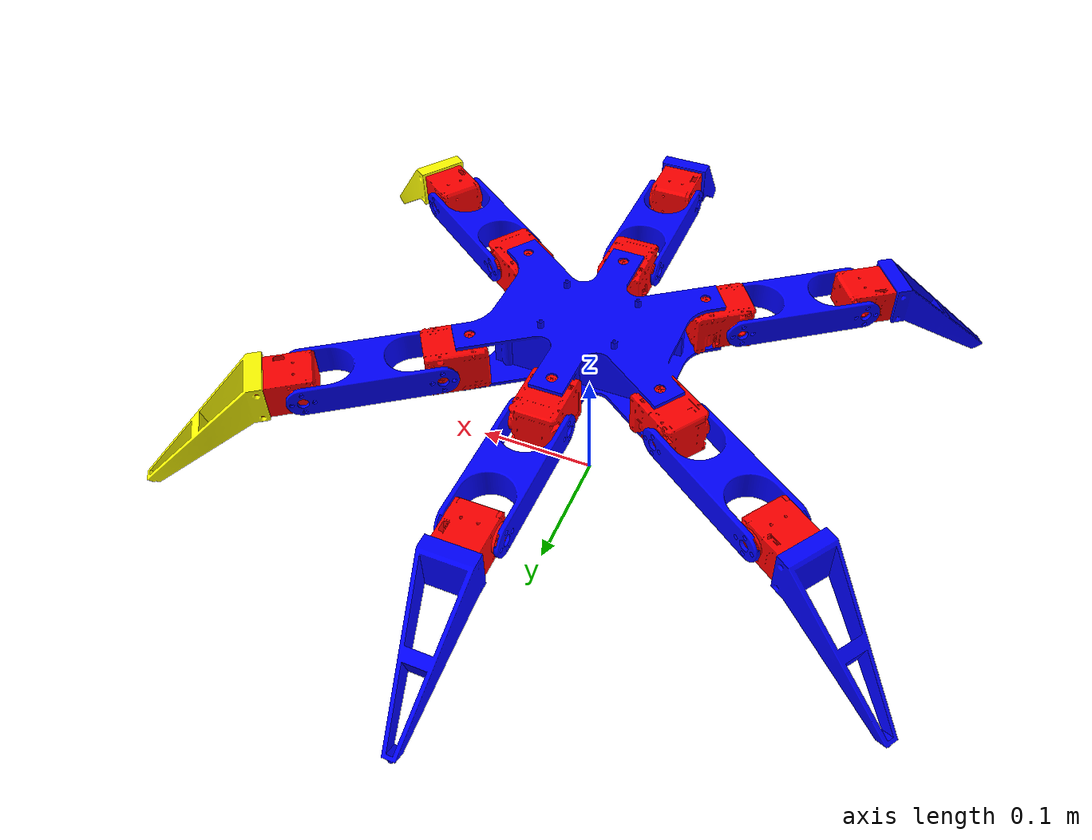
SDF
<sdf version="1.10">
    <model name="hexspider" canonical_link="chassis">
        <pose>0 0 0 0 0 0</pose>
        <plugin filename="gz-sim-joint-state-publisher-system" name="gz::sim::systems::JointStatePublisher"></plugin>
        <plugin filename="gz-sim-joint-position-controller-system" name="gz::sim::systems::JointPositionController">
            <joint_name>leg_br_servo_1</joint_name>
            <initial_position>0.0</initial_position>
            <use_velocity_commands>1</use_velocity_commands>
        </plugin>
        <plugin filename="gz-sim-joint-position-controller-system" name="gz::sim::systems::JointPositionController">
            <joint_name>leg_br_servo_2</joint_name>
            <initial_position>-0.5236</initial_position>
            <use_velocity_commands>1</use_velocity_commands>
        </plugin>
        <plugin filename="gz-sim-joint-position-controller-system" name="gz::sim::systems::JointPositionController">
            <joint_name>leg_br_servo_3</joint_name>
            <initial_position>1.5472</initial_position>
            <use_velocity_commands>1</use_velocity_commands>
        </plugin>
        <plugin filename="gz-sim-joint-position-controller-system" name="gz::sim::systems::JointPositionController">
            <joint_name>leg_bl_servo_1</joint_name>
            <initial_position>0.0</initial_position>
            <use_velocity_commands>1</use_velocity_commands>
        </plugin>
        <plugin filename="gz-sim-joint-position-controller-system" name="gz::sim::systems::JointPositionController">
            <joint_name>leg_bl_servo_2</joint_name>
            <initial_position>-0.5236</initial_position>
            <use_velocity_commands>1</use_velocity_commands>
        </plugin>
        <plugin filename="gz-sim-joint-position-controller-system" name="gz::sim::systems::JointPositionController">
            <joint_name>leg_bl_servo_3</joint_name>
            <initial_position>1.5472</initial_position>
            <use_velocity_commands>1</use_velocity_commands>
        </plugin>
        <plugin filename="gz-sim-joint-position-controller-system" name="gz::sim::systems::JointPositionController">
            <joint_name>leg_fr_servo_1</joint_name>
            <initial_position>0.0</initial_position>
            <use_velocity_commands>1</use_velocity_commands>
        </plugin>
        <plugin filename="gz-sim-joint-position-controller-system" name="gz::sim::systems::JointPositionController">
            <joint_name>leg_fr_servo_2</joint_name>
            <initial_position>-0.5236</initial_position>
            <use_velocity_commands>1</use_velocity_commands>
        </plugin>
        <plugin filename="gz-sim-joint-position-controller-system" name="gz::sim::systems::JointPositionController">
            <joint_name>leg_fr_servo_3</joint_name>
            <initial_position>1.5472</initial_position>
            <use_velocity_commands>1</use_velocity_commands>
        </plugin>
        <plugin filename="gz-sim-joint-position-controller-system" name="gz::sim::systems::JointPositionController">
            <joint_name>leg_cr_servo_1</joint_name>
            <initial_position>0.0</initial_position>
            <use_velocity_commands>1</use_velocity_commands>
        </plugin>
        <plugin filename="gz-sim-joint-position-controller-system" name="gz::sim::systems::JointPositionController">
            <joint_name>leg_cr_servo_2</joint_name>
            <initial_position>-0.5236</initial_position>
            <use_velocity_commands>1</use_velocity_commands>
        </plugin>
        <plugin filename="gz-sim-joint-position-controller-system" name="gz::sim::systems::JointPositionController">
            <joint_name>leg_cr_servo_3</joint_name>
            <initial_position>1.5472</initial_position>
            <use_velocity_commands>1</use_velocity_commands>
        </plugin>
        <plugin filename="gz-sim-joint-position-controller-system" name="gz::sim::systems::JointPositionController">
            <joint_name>leg_cl_servo_1</joint_name>
            <initial_position>0.0</initial_position>
            <use_velocity_commands>1</use_velocity_commands>
        </plugin>
        <plugin filename="gz-sim-joint-position-controller-system" name="gz::sim::systems::JointPositionController">
            <joint_name>leg_cl_servo_2</joint_name>
            <initial_position>-0.5236</initial_position>
            <use_velocity_commands>1</use_velocity_commands>
        </plugin>
        <plugin filename="gz-sim-joint-position-controller-system" name="gz::sim::systems::JointPositionController">
            <joint_name>leg_cl_servo_3</joint_name>
            <initial_position>1.5472</initial_position>
            <use_velocity_commands>1</use_velocity_commands>
        </plugin>
        <plugin filename="gz-sim-joint-position-controller-system" name="gz::sim::systems::JointPositionController">
            <joint_name>leg_fl_servo_1</joint_name>
            <initial_position>0.0</initial_position>
            <use_velocity_commands>1</use_velocity_commands>
        </plugin>
        <plugin filename="gz-sim-joint-position-controller-system" name="gz::sim::systems::JointPositionController">
            <joint_name>leg_fl_servo_2</joint_name>
            <initial_position>-0.5236</initial_position>
            <use_velocity_commands>1</use_velocity_commands>
        </plugin>
        <plugin filename="gz-sim-joint-position-controller-system" name="gz::sim::systems::JointPositionController">
            <joint_name>leg_fl_servo_3</joint_name>
            <initial_position>1.5472</initial_position>
            <use_velocity_commands>1</use_velocity_commands>
        </plugin>
        <plugin filename="gz-sim-imu-system"
                name="gz::sim::systems::Imu">
        </plugin>
        <link name="chassis">
            <pose relative_to="__model__">0 0 0.15 0 0 -1.57</pose>
            <inertial>
                <mass>0.188490</mass>
                <density>100</density>
                <inertia>
                    <ixx>4.024e-04</ixx>
                    <ixy>5.662e-19</ixy>
                    <ixz>-5.234e-18</ixz>
                    <iyy>2.646e-04</iyy>
                    <iyz>0</iyz>
                    <izz>5.502e-04</izz>
                </inertia>
            </inertial>
            <visual name="chassis_visual">
                <geometry>
                    <mesh>
                        <uri>model://hexspider/meshes/Chassis_v37.stl</uri>
                        <scale>0.001 0.001 0.001</scale>
                    </mesh>
                </geometry>
                <material>
                    <ambient>0 0 1 1</ambient>
                    <diffuse>0 0 1 1</diffuse>
                    <specular>0 0 1 1</specular>
                </material>
                <transparency>0</transparency>
                <cast_shadows>1</cast_shadows>
            </visual>
            <collision name="chassis_collision">
                <geometry>
                    <box>
                        <size>0.164 0.182020 0.05</size>
                    </box>
                </geometry>
            </collision>
            <sensor name="imu_sensor" type="imu">
                <always_on>1</always_on>
                <update_rate>100</update_rate>
                <visualize>true</visualize>
                <topic>/model/hexspider/imu</topic>
            </sensor>
        </link>
        <link name="leg_br_2xl_430">
            <pose relative_to="chassis">0.058219 -0.083748 0.0 0 0 0.610865</pose>
            <inertial>
                <mass>0.098</mass>
                <inertia>
                    <ixx>0.00002686</ixx>
                    <ixy>0.000000525</ixy>
                    <ixz>0.000000288</ixz>
                    <iyy>0.000016993</iyy>
                    <iyz>-0.000000524</iyz>
                    <izz>0.000026995</izz>
                </inertia>
            </inertial>
            <visual name="visual">
                <geometry>
                    <mesh>
                        <uri>model://hexspider/meshes/2XL-430_v4.stl</uri>
                        <scale>0.001 0.001 0.001</scale>
                    </mesh>
                </geometry>
                <material>
                    <ambient>1.0 0.0 0.0 1</ambient>
                    <diffuse>1.0 0.0 0.0 1</diffuse>
                    <specular>1.0 0.0 0.0 1</specular>
                </material>
                <transparency>0</transparency>
                <cast_shadows>1</cast_shadows>
            </visual>
            <collision name="collision">
                <geometry>
                    <box>
                        <size>0.036 0.0465 0.036</size>
                    </box>
                </geometry>
            </collision>
        </link>
        <link name="leg_br_coxa">
            <pose relative_to="leg_br_2xl_430">0 -0.062 0 0 0 0</pose>
            <inertial>
                <mass>0.059976</mass>
                <inertia>
                    <ixx>0.000019426</ixx>
                    <ixy>-7.7e-11</ixy>
                    <ixz>4.885e-14</ixz>
                    <iyy>0.000032981</iyy>
                    <iyz>0</iyz>
                    <izz>0.000046665</izz>
                </inertia>
            </inertial>
            <visual name="visual">
                <pose relative_to="leg_br_coxa">0.0 -0.144 0 0 0 1.57</pose>
                <geometry>
                    <mesh>
                        <uri>model://hexspider/meshes/Coxa_v37.stl</uri>
                        <scale>0.001 0.001 0.001</scale>
                    </mesh>
                </geometry>
                <material>
                    <ambient>0 0 1 1</ambient>
                    <diffuse>0 0 1 1</diffuse>
                    <specular>0 0 1 1</specular>
                </material>
                <transparency>0</transparency>
                <cast_shadows>1</cast_shadows>
            </visual>
            <collision name="collision">
                <geometry>
                    <box>
                        <size>0.046 0.124 0.024</size>
                    </box>
                </geometry>
            </collision>
        </link>
        <link name="leg_br_xl_430">
            <pose relative_to="leg_br_coxa">0.0 -0.05 0.0 0.0 1.57 0.0</pose>
            <inertial>
                <mass>0.098</mass>
                <inertia>
                    <ixx>0.00002686</ixx>
                    <ixy>0.000000525</ixy>
                    <ixz>0.000000288</ixz>
                    <iyy>0.000016993</iyy>
                    <iyz>-0.000000524</iyz>
                    <izz>0.000026995</izz>
                </inertia>
            </inertial>
            <visual name="visual">
                <geometry>
                    <mesh>
                        <uri>model://hexspider/meshes/XL-430_new_v2.stl</uri>
                        <scale>0.001 0.001 0.001</scale>
                    </mesh>
                </geometry>
                <material>
                    <ambient>1 0 0 1</ambient>
                    <diffuse>1 0 0 1</diffuse>
                    <specular>1 0 0 1</specular>
                </material>
                <transparency>0</transparency>
                <cast_shadows>1</cast_shadows>
            </visual>
            <collision name="collision">
                <geometry>
                    <box>
                        <size>0.0285 0.0465 0.034</size>
                    </box>
                </geometry>
            </collision>
        </link>
        <link name="leg_br_femur">
            <pose relative_to="leg_br_xl_430">0.04511 -0.06325 0 1.57 0.0 -1.57</pose>
            <inertial>
                <mass>0.029032</mass>
                <inertia>
                    <ixx>0.000035762</ixx>
                    <ixy>0</ixy>
                    <ixz>0.000013215</ixz>
                    <iyy>0.000038367</iyy>
                    <iyz>0</iyz>
                    <izz>0.000010773</izz>
                </inertia>
            </inertial>
            <visual name="visual">
                <pose relative_to="leg_br_femur">-0.24056 0.0 -0.038 0 -0.44 0</pose>
                <geometry>
                    <mesh>
                        <uri>model://hexspider/meshes/Femur_20260405_1.stl</uri>
                        <scale>0.001 0.001 0.001</scale>
                    </mesh>
                </geometry>
                <material>
                    <ambient>0 0 1 1</ambient>
                    <diffuse>0 0 1 1</diffuse>
                    <specular>0 0 1 1</specular>
                </material>
                <transparency>0</transparency>
                <cast_shadows>1</cast_shadows>
            </visual>
            <collision name="collision">
                <pose relative_to="leg_br_femur">-0.24056 0.0 -0.038 0 -0.44 0</pose>
                <geometry>
                    <mesh>
                        <uri>model://hexspider/meshes/Femur_20260405_1.stl</uri>
                        <scale>0.001 0.001 0.001</scale>
                    </mesh>
                </geometry>
                <surface>
                    <friction>
                        <ode>
                            <mu>1.0</mu>
                            <mu2>1.0</mu2>
                        </ode>
                    </friction>
                    <contact>
                        <ode>
                            <kp>10000</kp>
                            <kd>10</kd>
                        </ode>
                    </contact>
                </surface>
            </collision>
        </link>
        <link name="leg_cr_2xl_430">
            <pose relative_to="chassis">0.082 0 0.0 0 0 1.570796</pose>
            <inertial>
                <mass>0.098</mass>
                <inertia>
                    <ixx>0.00002686</ixx>
                    <ixy>0.000000525</ixy>
                    <ixz>0.000000288</ixz>
                    <iyy>0.000016993</iyy>
                    <iyz>-0.000000524</iyz>
                    <izz>0.000026995</izz>
                </inertia>
            </inertial>
            <visual name="visual">
                <geometry>
                    <mesh>
                        <uri>model://hexspider/meshes/2XL-430_v4.stl</uri>
                        <scale>0.001 0.001 0.001</scale>
                    </mesh>
                </geometry>
                <material>
                    <ambient>1.0 0.0 0.0 1</ambient>
                    <diffuse>1.0 0.0 0.0 1</diffuse>
                    <specular>1.0 0.0 0.0 1</specular>
                </material>
                <transparency>0</transparency>
                <cast_shadows>1</cast_shadows>
            </visual>
            <collision name="collision">
                <geometry>
                    <box>
                        <size>0.036 0.0465 0.036</size>
                    </box>
                </geometry>
            </collision>
        </link>
        <link name="leg_cr_coxa">
            <pose relative_to="leg_cr_2xl_430">0 -0.062 0 0 0 0</pose>
            <inertial>
                <mass>0.059976</mass>
                <inertia>
                    <ixx>0.000019426</ixx>
                    <ixy>-7.7e-11</ixy>
                    <ixz>4.885e-14</ixz>
                    <iyy>0.000032981</iyy>
                    <iyz>0</iyz>
                    <izz>0.000046665</izz>
                </inertia>
            </inertial>
            <visual name="visual">
                <pose relative_to="leg_cr_coxa">0.0 -0.144 0 0 0 1.57</pose>
                <geometry>
                    <mesh>
                        <uri>model://hexspider/meshes/Coxa_v37.stl</uri>
                        <scale>0.001 0.001 0.001</scale>
                    </mesh>
                </geometry>
                <material>
                    <ambient>0 0 1 1</ambient>
                    <diffuse>0 0 1 1</diffuse>
                    <specular>0 0 1 1</specular>
                </material>
                <transparency>0</transparency>
                <cast_shadows>1</cast_shadows>
            </visual>
            <collision name="collision">
                <geometry>
                    <box>
                        <size>0.046 0.124 0.024</size>
                    </box>
                </geometry>
            </collision>
        </link>
        <link name="leg_cr_xl_430">
            <pose relative_to="leg_cr_coxa">0.0 -0.05 0.0 0.0 1.57 0.0</pose>
            <inertial>
                <mass>0.098</mass>
                <inertia>
                    <ixx>0.00002686</ixx>
                    <ixy>0.000000525</ixy>
                    <ixz>0.000000288</ixz>
                    <iyy>0.000016993</iyy>
                    <iyz>-0.000000524</iyz>
                    <izz>0.000026995</izz>
                </inertia>
            </inertial>
            <visual name="visual">
                <geometry>
                    <mesh>
                        <uri>model://hexspider/meshes/XL-430_new_v2.stl</uri>
                        <scale>0.001 0.001 0.001</scale>
                    </mesh>
                </geometry>
                <material>
                    <ambient>1 0 0 1</ambient>
                    <diffuse>1 0 0 1</diffuse>
                    <specular>1 0 0 1</specular>
                </material>
                <transparency>0</transparency>
                <cast_shadows>1</cast_shadows>
            </visual>
            <collision name="collision">
                <geometry>
                    <box>
                        <size>0.0285 0.0465 0.034</size>
                    </box>
                </geometry>
            </collision>
        </link>
        <link name="leg_cr_femur">
            <pose relative_to="leg_cr_xl_430">0.04511 -0.06325 0 1.57 0.0 -1.57</pose>
            <inertial>
                <mass>0.028812</mass>
                <inertia>
                    <ixx>0.000034156</ixx>
                    <ixy>0</ixy>
                    <ixz>0.000012503</ixz>
                    <iyy>0.000036442</iyy>
                    <iyz>0</iyz>
                    <izz>0.000010478</izz>
                </inertia>
            </inertial>
            <visual name="visual">
                <pose relative_to="leg_cr_femur">-0.24056 0.0 -0.038 0 -0.44 0</pose>
                <geometry>
                    <mesh>
                        <uri>model://hexspider/meshes/Femur_20260405_1.stl</uri>
                        <scale>0.001 0.001 0.001</scale>
                    </mesh>
                </geometry>
                <material>
                    <ambient>0 0 1 1</ambient>
                    <diffuse>0 0 1 1</diffuse>
                    <specular>0 0 1 1</specular>
                </material>
                <transparency>0</transparency>
                <cast_shadows>1</cast_shadows>
            </visual>
            <collision name="collision">
                <pose relative_to="leg_cr_femur">-0.24056 0.0 -0.038 0 -0.44 0</pose>
                <geometry>
                    <mesh>
                        <uri>model://hexspider/meshes/Femur_20260405_1.stl</uri>
                        <scale>0.001 0.001 0.001</scale>
                    </mesh>
                </geometry>
                <surface>
                    <friction>
                        <ode>
                            <mu>1.0</mu>
                            <mu2>1.0</mu2>
                        </ode>
                    </friction>
                    <contact>
                        <ode>
                            <kp>10000</kp>
                            <kd>10</kd>
                        </ode>
                    </contact>
                </surface>
            </collision>
        </link>
        <link name="leg_fr_2xl_430">
            <pose relative_to="chassis">0.058219 0.083748 0.0 0 0 2.530727</pose>
            <inertial>
                <mass>0.098</mass>
                <inertia>
                    <ixx>0.00002686</ixx>
                    <ixy>0.000000525</ixy>
                    <ixz>0.000000288</ixz>
                    <iyy>0.000016993</iyy>
                    <iyz>-0.000000524</iyz>
                    <izz>0.000026995</izz>
                </inertia>
            </inertial>
            <visual name="visual">
                <geometry>
                    <mesh>
                        <uri>model://hexspider/meshes/2XL-430_v4.stl</uri>
                        <scale>0.001 0.001 0.001</scale>
                    </mesh>
                </geometry>
                <material>
                    <ambient>1.0 0.0 0.0 1</ambient>
                    <diffuse>1.0 0.0 0.0 1</diffuse>
                    <specular>1.0 0.0 0.0 1</specular>
                </material>
                <transparency>0</transparency>
                <cast_shadows>1</cast_shadows>
            </visual>
            <collision name="collision">
                <geometry>
                    <box>
                        <size>0.036 0.0465 0.036</size>
                    </box>
                </geometry>
            </collision>
        </link>
        <link name="leg_fr_coxa">
            <pose relative_to="leg_fr_2xl_430">0 -0.062 0 0 0 0</pose>
            <inertial>
                <mass>0.059976</mass>
                <inertia>
                    <ixx>0.000019426</ixx>
                    <ixy>-7.7e-11</ixy>
                    <ixz>4.885e-14</ixz>
                    <iyy>0.000032981</iyy>
                    <iyz>0</iyz>
                    <izz>0.000046665</izz>
                </inertia>
            </inertial>
            <visual name="visual">
                <pose relative_to="leg_fr_coxa">0.0 -0.144 0 0 0 1.57</pose>
                <geometry>
                    <mesh>
                        <uri>model://hexspider/meshes/Coxa_v37.stl</uri>
                        <scale>0.001 0.001 0.001</scale>
                    </mesh>
                </geometry>
                <material>
                    <ambient>0 0 1 1</ambient>
                    <diffuse>0 0 1 1</diffuse>
                    <specular>0 0 1 1</specular>
                </material>
                <transparency>0</transparency>
                <cast_shadows>1</cast_shadows>
            </visual>
            <collision name="collision">
                <geometry>
                    <box>
                        <size>0.046 0.124 0.024</size>
                    </box>
                </geometry>
            </collision>
        </link>
        <link name="leg_fr_xl_430">
            <pose relative_to="leg_fr_coxa">0.0 -0.05 0.0 0.0 1.57 0.0</pose>
            <inertial>
                <mass>0.098</mass>
                <inertia>
                    <ixx>0.00002686</ixx>
                    <ixy>0.000000525</ixy>
                    <ixz>0.000000288</ixz>
                    <iyy>0.000016993</iyy>
                    <iyz>-0.000000524</iyz>
                    <izz>0.000026995</izz>
                </inertia>
            </inertial>
            <visual name="visual">
                <geometry>
                    <mesh>
                        <uri>model://hexspider/meshes/XL-430_new_v2.stl</uri>
                        <scale>0.001 0.001 0.001</scale>
                    </mesh>
                </geometry>
                <material>
                    <ambient>1 0 0 1</ambient>
                    <diffuse>1 0 0 1</diffuse>
                    <specular>1 0 0 1</specular>
                </material>
                <transparency>0</transparency>
                <cast_shadows>1</cast_shadows>
            </visual>
            <collision name="collision">
                <geometry>
                    <box>
                        <size>0.0285 0.0465 0.034</size>
                    </box>
                </geometry>
            </collision>
        </link>
        <link name="leg_fr_femur">
            <pose relative_to="leg_fr_xl_430">0.04511 -0.06325 0 1.57 0.0 -1.57</pose>
            <inertial>
                <mass>0.028812</mass>
                <inertia>
                    <ixx>0.000034156</ixx>
                    <ixy>0</ixy>
                    <ixz>0.000012503</ixz>
                    <iyy>0.000036442</iyy>
                    <iyz>0</iyz>
                    <izz>0.000010478</izz>
                </inertia>
            </inertial>
            <visual name="visual">
                <pose relative_to="leg_fr_femur">-0.24056 0.0 -0.038 0 -0.44 0</pose>
                <geometry>
                    <mesh>
                        <uri>model://hexspider/meshes/Femur_20260405_1.stl</uri>
                        <scale>0.001 0.001 0.001</scale>
                    </mesh>
                </geometry>
                <material>
                    <ambient>1 1 0 1</ambient>
                    <diffuse>1 1 0 1</diffuse>
                    <specular>1 1 0 1</specular>
                </material>
                <transparency>0</transparency>
                <cast_shadows>1</cast_shadows>
            </visual>
            <collision name="collision">
                <pose relative_to="leg_fr_femur">-0.24056 0.0 -0.038 0 -0.44 0</pose>
                <geometry>
                    <mesh>
                        <uri>model://hexspider/meshes/Femur_20260405_1.stl</uri>
                        <scale>0.001 0.001 0.001</scale>
                    </mesh>
                </geometry>
                <surface>
                    <friction>
                        <ode>
                            <mu>1.0</mu>
                            <mu2>1.0</mu2>
                        </ode>
                    </friction>
                    <contact>
                        <ode>
                            <kp>10000</kp>
                            <kd>10</kd>
                        </ode>
                    </contact>
                </surface>
            </collision>
        </link>
        <link name="leg_bl_2xl_430">
            <pose relative_to="chassis">-0.058219 -0.083748 0.0 0 0 -0.610865</pose>
            <inertial>
                <mass>0.098</mass>
                <inertia>
                    <ixx>0.00002686</ixx>
                    <ixy>0.000000525</ixy>
                    <ixz>0.000000288</ixz>
                    <iyy>0.000016993</iyy>
                    <iyz>-0.000000524</iyz>
                    <izz>0.000026995</izz>
                </inertia>
            </inertial>
            <visual name="visual">
                <geometry>
                    <mesh>
                        <uri>model://hexspider/meshes/2XL-430_v4.stl</uri>
                        <scale>0.001 0.001 0.001</scale>
                    </mesh>
                </geometry>
                <material>
                    <ambient>1.0 0.0 0.0 1</ambient>
                    <diffuse>1.0 0.0 0.0 1</diffuse>
                    <specular>1.0 0.0 0.0 1</specular>
                </material>
                <transparency>0</transparency>
                <cast_shadows>1</cast_shadows>
            </visual>
            <collision name="collision">
                <geometry>
                    <box>
                        <size>0.036 0.0465 0.036</size>
                    </box>
                </geometry>
            </collision>
        </link>
        <link name="leg_bl_coxa">
            <pose relative_to="leg_bl_2xl_430">0 -0.062 0 0 0 0</pose>
            <inertial>
                <mass>0.059976</mass>
                <inertia>
                    <ixx>0.000019426</ixx>
                    <ixy>-7.7e-11</ixy>
                    <ixz>4.885e-14</ixz>
                    <iyy>0.000032981</iyy>
                    <iyz>0</iyz>
                    <izz>0.000046665</izz>
                </inertia>
            </inertial>
            <visual name="visual">
                <pose relative_to="leg_bl_coxa">0.0 -0.144 0 0 0 1.57</pose>
                <geometry>
                    <mesh>
                        <uri>model://hexspider/meshes/Coxa_v37.stl</uri>
                        <scale>0.001 0.001 0.001</scale>
                    </mesh>
                </geometry>
                <material>
                    <ambient>0 0 1 1</ambient>
                    <diffuse>0 0 1 1</diffuse>
                    <specular>0 0 1 1</specular>
                </material>
                <transparency>0</transparency>
                <cast_shadows>1</cast_shadows>
            </visual>
            <collision name="collision">
                <geometry>
                    <box>
                        <size>0.046 0.124 0.024</size>
                    </box>
                </geometry>
            </collision>
        </link>
        <link name="leg_bl_xl_430">
            <pose relative_to="leg_bl_coxa">0.0 -0.05 0.0 0.0 1.57 0.0</pose>
            <inertial>
                <mass>0.098</mass>
                <inertia>
                    <ixx>0.00002686</ixx>
                    <ixy>0.000000525</ixy>
                    <ixz>0.000000288</ixz>
                    <iyy>0.000016993</iyy>
                    <iyz>-0.000000524</iyz>
                    <izz>0.000026995</izz>
                </inertia>
            </inertial>
            <visual name="visual">
                <geometry>
                    <mesh>
                        <uri>model://hexspider/meshes/XL-430_new_v2.stl</uri>
                        <scale>0.001 0.001 0.001</scale>
                    </mesh>
                </geometry>
                <material>
                    <ambient>1 0 0 1</ambient>
                    <diffuse>1 0 0 1</diffuse>
                    <specular>1 0 0 1</specular>
                </material>
                <transparency>0</transparency>
                <cast_shadows>1</cast_shadows>
            </visual>
            <collision name="collision">
                <geometry>
                    <box>
                        <size>0.0285 0.0465 0.034</size>
                    </box>
                </geometry>
            </collision>
        </link>
        <link name="leg_bl_femur">
            <pose relative_to="leg_bl_xl_430">0.04511 -0.06325 0 1.57 0.0 -1.57</pose>
            <inertial>
                <mass>0.028812</mass>
                <inertia>
                    <ixx>0.000034156</ixx>
                    <ixy>0</ixy>
                    <ixz>0.000012503</ixz>
                    <iyy>0.000036442</iyy>
                    <iyz>0</iyz>
                    <izz>0.000010478</izz>
                </inertia>
            </inertial>
            <visual name="visual">
                <pose relative_to="leg_bl_femur">-0.24056 0.0 -0.038 0 -0.44 0</pose>
                <geometry>
                    <mesh>
                        <uri>model://hexspider/meshes/Femur_20260405_1.stl</uri>
                        <scale>0.001 0.001 0.001</scale>
                    </mesh>
                </geometry>
                <material>
                    <ambient>0 0 1 1</ambient>
                    <diffuse>0 0 1 1</diffuse>
                    <specular>0 0 1 1</specular>
                </material>
                <transparency>0</transparency>
                <cast_shadows>1</cast_shadows>
            </visual>
            <collision name="collision">
                <pose relative_to="leg_bl_femur">-0.24056 0.0 -0.038 0 -0.44 0</pose>
                <geometry>
                    <mesh>
                        <uri>model://hexspider/meshes/Femur_20260405_1.stl</uri>
                        <scale>0.001 0.001 0.001</scale>
                    </mesh>
                </geometry>
                <surface>
                    <friction>
                        <ode>
                            <mu>1.0</mu>
                            <mu2>1.0</mu2>
                        </ode>
                    </friction>
                    <contact>
                        <ode>
                            <kp>10000</kp>
                            <kd>10</kd>
                        </ode>
                    </contact>
                </surface>
            </collision>
        </link>
        <link name="leg_cl_2xl_430">
            <pose relative_to="chassis">-0.082 0 0.0 0 0 -1.570796</pose>
            <inertial>
                <mass>0.098</mass>
                <inertia>
                    <ixx>0.00002686</ixx>
                    <ixy>0.000000525</ixy>
                    <ixz>0.000000288</ixz>
                    <iyy>0.000016993</iyy>
                    <iyz>-0.000000524</iyz>
                    <izz>0.000026995</izz>
                </inertia>
            </inertial>
            <visual name="visual">
                <geometry>
                    <mesh>
                        <uri>model://hexspider/meshes/2XL-430_v4.stl</uri>
                        <scale>0.001 0.001 0.001</scale>
                    </mesh>
                </geometry>
                <material>
                    <ambient>1.0 0.0 0.0 1</ambient>
                    <diffuse>1.0 0.0 0.0 1</diffuse>
                    <specular>1.0 0.0 0.0 1</specular>
                </material>
                <transparency>0</transparency>
                <cast_shadows>1</cast_shadows>
            </visual>
            <collision name="collision">
                <geometry>
                    <box>
                        <size>0.036 0.0465 0.036</size>
                    </box>
                </geometry>
            </collision>
        </link>
        <link name="leg_cl_coxa">
            <pose relative_to="leg_cl_2xl_430">0 -0.062 0 0 0 0</pose>
            <inertial>
                <mass>0.059976</mass>
                <inertia>
                    <ixx>0.000019426</ixx>
                    <ixy>-7.7e-11</ixy>
                    <ixz>4.885e-14</ixz>
                    <iyy>0.000032981</iyy>
                    <iyz>0</iyz>
                    <izz>0.000046665</izz>
                </inertia>
            </inertial>
            <visual name="visual">
                <pose relative_to="leg_cl_coxa">0.0 -0.144 0 0 0 1.57</pose>
                <geometry>
                    <mesh>
                        <uri>model://hexspider/meshes/Coxa_v37.stl</uri>
                        <scale>0.001 0.001 0.001</scale>
                    </mesh>
                </geometry>
                <material>
                    <ambient>0 0 1 1</ambient>
                    <diffuse>0 0 1 1</diffuse>
                    <specular>0 0 1 1</specular>
                </material>
                <transparency>0</transparency>
                <cast_shadows>1</cast_shadows>
            </visual>
            <collision name="collision">
                <geometry>
                    <box>
                        <size>0.046 0.124 0.024</size>
                    </box>
                </geometry>
            </collision>
        </link>
        <link name="leg_cl_xl_430">
            <pose relative_to="leg_cl_coxa">0.0 -0.05 0.0 0.0 1.57 0.0</pose>
            <inertial>
                <mass>0.098</mass>
                <inertia>
                    <ixx>0.00002686</ixx>
                    <ixy>0.000000525</ixy>
                    <ixz>0.000000288</ixz>
                    <iyy>0.000016993</iyy>
                    <iyz>-0.000000524</iyz>
                    <izz>0.000026995</izz>
                </inertia>
            </inertial>
            <visual name="visual">
                <geometry>
                    <mesh>
                        <uri>model://hexspider/meshes/XL-430_new_v2.stl</uri>
                        <scale>0.001 0.001 0.001</scale>
                    </mesh>
                </geometry>
                <material>
                    <ambient>1 0 0 1</ambient>
                    <diffuse>1 0 0 1</diffuse>
                    <specular>1 0 0 1</specular>
                </material>
                <transparency>0</transparency>
                <cast_shadows>1</cast_shadows>
            </visual>
            <collision name="collision">
                <geometry>
                    <box>
                        <size>0.0285 0.0465 0.034</size>
                    </box>
                </geometry>
            </collision>
        </link>
        <link name="leg_cl_femur">
            <pose relative_to="leg_cl_xl_430">0.04511 -0.06325 0 1.57 0.0 -1.57</pose>
            <inertial>
                <mass>0.028812</mass>
                <inertia>
                    <ixx>0.000034156</ixx>
                    <ixy>0</ixy>
                    <ixz>0.000012503</ixz>
                    <iyy>0.000036442</iyy>
                    <iyz>0</iyz>
                    <izz>0.000010478</izz>
                </inertia>
            </inertial>
            <visual name="visual">
                <pose relative_to="leg_cl_femur">-0.24056 0.0 -0.038 0 -0.44 0</pose>
                <geometry>
                    <mesh>
                        <uri>model://hexspider/meshes/Femur_20260405_1.stl</uri>
                        <scale>0.001 0.001 0.001</scale>
                    </mesh>
                </geometry>
                <material>
                    <ambient>0 0 1 1</ambient>
                    <diffuse>0 0 1 1</diffuse>
                    <specular>0 0 1 1</specular>
                </material>
                <transparency>0</transparency>
                <cast_shadows>1</cast_shadows>
            </visual>
            <collision name="collision">
                <pose relative_to="leg_cl_femur">-0.24056 0.0 -0.038 0 -0.44 0</pose>
                <geometry>
                    <mesh>
                        <uri>model://hexspider/meshes/Femur_20260405_1.stl</uri>
                        <scale>0.001 0.001 0.001</scale>
                    </mesh>
                </geometry>
                <surface>
                    <friction>
                        <ode>
                            <mu>1.0</mu>
                            <mu2>1.0</mu2>
                        </ode>
                    </friction>
                    <contact>
                        <ode>
                            <kp>10000</kp>
                            <kd>10</kd>
                        </ode>
                    </contact>
                </surface>
            </collision>
        </link>
        <link name="leg_fl_2xl_430">
            <pose relative_to="chassis">-0.058219 0.083748 0.0 0 0 -2.530727</pose>
            <inertial>
                <mass>0.098</mass>
                <inertia>
                    <ixx>0.00002686</ixx>
                    <ixy>0.000000525</ixy>
                    <ixz>0.000000288</ixz>
                    <iyy>0.000016993</iyy>
                    <iyz>-0.000000524</iyz>
                    <izz>0.000026995</izz>
                </inertia>
            </inertial>
            <visual name="visual">
                <geometry>
                    <mesh>
                        <uri>model://hexspider/meshes/2XL-430_v4.stl</uri>
                        <scale>0.001 0.001 0.001</scale>
                    </mesh>
                </geometry>
                <material>
                    <ambient>1.0 0.0 0.0 1</ambient>
                    <diffuse>1.0 0.0 0.0 1</diffuse>
                    <specular>1.0 0.0 0.0 1</specular>
                </material>
                <transparency>0</transparency>
                <cast_shadows>1</cast_shadows>
            </visual>
            <collision name="collision">
                <geometry>
                    <box>
                        <size>0.036 0.0465 0.036</size>
                    </box>
                </geometry>
            </collision>
        </link>
        <link name="leg_fl_coxa">
            <pose relative_to="leg_fl_2xl_430">0 -0.062 0 0 0 0</pose>
            <inertial>
                <mass>0.059976</mass>
                <inertia>
                    <ixx>0.000019426</ixx>
                    <ixy>-7.7e-11</ixy>
                    <ixz>4.885e-14</ixz>
                    <iyy>0.000032981</iyy>
                    <iyz>0</iyz>
                    <izz>0.000046665</izz>
                </inertia>
            </inertial>
            <visual name="visual">
                <pose relative_to="leg_fl_coxa">0.0 -0.144 0 0 0 1.57</pose>
                <geometry>
                    <mesh>
                        <uri>model://hexspider/meshes/Coxa_v37.stl</uri>
                        <scale>0.001 0.001 0.001</scale>
                    </mesh>
                </geometry>
                <material>
                    <ambient>0 0 1 1</ambient>
                    <diffuse>0 0 1 1</diffuse>
                    <specular>0 0 1 1</specular>
                </material>
                <transparency>0</transparency>
                <cast_shadows>1</cast_shadows>
            </visual>
            <collision name="collision">
                <geometry>
                    <box>
                        <size>0.046 0.124 0.024</size>
                    </box>
                </geometry>
            </collision>
        </link>
        <link name="leg_fl_xl_430">
            <pose relative_to="leg_fl_coxa">0.0 -0.05 0.0 0.0 1.57 0.0</pose>
            <inertial>
                <mass>0.098</mass>
                <inertia>
                    <ixx>0.00002686</ixx>
                    <ixy>0.000000525</ixy>
                    <ixz>0.000000288</ixz>
                    <iyy>0.000016993</iyy>
                    <iyz>-0.000000524</iyz>
                    <izz>0.000026995</izz>
                </inertia>
            </inertial>
            <visual name="visual">
                <geometry>
                    <mesh>
                        <uri>model://hexspider/meshes/XL-430_new_v2.stl</uri>
                        <scale>0.001 0.001 0.001</scale>
                    </mesh>
                </geometry>
                <material>
                    <ambient>1 0 0 1</ambient>
                    <diffuse>1 0 0 1</diffuse>
                    <specular>1 0 0 1</specular>
                </material>
                <transparency>0</transparency>
                <cast_shadows>1</cast_shadows>
            </visual>
            <collision name="collision">
                <geometry>
                    <box>
                        <size>0.0285 0.0465 0.034</size>
                    </box>
                </geometry>
            </collision>
        </link>
        <link name="leg_fl_femur">
            <pose relative_to="leg_fl_xl_430">0.04511 -0.06325 0 1.57 0.0 -1.57</pose>
            <inertial>
                <mass>0.028812</mass>
                <inertia>
                    <ixx>0.000034156</ixx>
                    <ixy>0</ixy>
                    <ixz>0.000012503</ixz>
                    <iyy>0.000036442</iyy>
                    <iyz>0</iyz>
                    <izz>0.000010478</izz>
                </inertia>
            </inertial>
            <visual name="visual">
                <pose relative_to="leg_fl_femur">-0.24056 0.0 -0.038 0 -0.44 0</pose>
                <geometry>
                    <mesh>
                        <uri>model://hexspider/meshes/Femur_20260405_1.stl</uri>
                        <scale>0.001 0.001 0.001</scale>
                    </mesh>
                </geometry>
                <material>
                    <ambient>1 1 0 1</ambient>
                    <diffuse>1 1 0 1</diffuse>
                    <specular>1 1 0 1</specular>
                </material>
                <transparency>0</transparency>
                <cast_shadows>1</cast_shadows>
            </visual>
            <collision name="collision">
                <pose relative_to="leg_fl_femur">-0.24056 0.0 -0.038 0 -0.44 0</pose>
                <geometry>
                    <mesh>
                        <uri>model://hexspider/meshes/Femur_20260405_1.stl</uri>
                        <scale>0.001 0.001 0.001</scale>
                    </mesh>
                </geometry>
                <surface>
                    <friction>
                        <ode>
                            <mu>1.0</mu>
                            <mu2>1.0</mu2>
                        </ode>
                    </friction>
                    <contact>
                        <ode>
                            <kp>10000</kp>
                            <kd>10</kd>
                        </ode>
                    </contact>
                </surface>
            </collision>
        </link>
        <joint name="leg_br_servo_1" type="revolute">
            <pose relative_to="leg_br_2xl_430">0 0.012 0.000 0 0 0</pose>
            <parent>chassis</parent>
            <child>leg_br_2xl_430</child>
            <axis>
                <xyz expressed_in="__model__">0 0 1</xyz>
                <limit>
                    <effort>5</effort>
                    <velocity>6</velocity>
                    <lower>-1.57</lower>
                    <upper>1.57</upper>
                </limit>
            </axis>
        </joint>
        <joint name="leg_br_servo_2" type="revolute">
            <pose relative_to="leg_br_2xl_430">0 -0.012 0.000 0 0 0</pose>
            <parent>leg_br_2xl_430</parent>
            <child>leg_br_coxa</child>
            <axis>
                <xyz expressed_in="leg_br_2xl_430">1 0 0</xyz>
                <limit>
                    <effort>5</effort>
                    <velocity>6</velocity>
                    <lower>-1.570796</lower>
                    <upper>1.570796</upper>
                </limit>
            </axis>
        </joint>
        <joint name="leg_br_servo_3" type="revolute">
            <pose relative_to="leg_br_xl_430">0 0.0 0.000 0 0 0</pose>
            <parent>leg_br_coxa</parent>
            <child>leg_br_xl_430</child>
            <axis>
                <xyz expressed_in="leg_br_xl_430">0 0 1</xyz>
                <limit>
                    <effort>5</effort>
                    <velocity>6</velocity>
                    <lower>-2.570796</lower>
                    <upper>2.570796</upper>
                </limit>
            </axis>
        </joint>
        <joint name="leg_br_femur_joint" type="fixed">
            <pose relative_to="leg_br_xl_430">0 0.012 0.000 0 0 0</pose>
            <parent>leg_br_xl_430</parent>
            <child>leg_br_femur</child>
        </joint>
        <joint name="leg_cr_servo_1" type="revolute">
            <pose relative_to="leg_cr_2xl_430">0 0.012 0.000 0 0 0</pose>
            <parent>chassis</parent>
            <child>leg_cr_2xl_430</child>
            <axis>
                <xyz expressed_in="__model__">0 0 1</xyz>
                <limit>
                    <effort>5</effort>
                    <velocity>6</velocity>
                    <lower>-0.78539</lower>
                    <upper>0.78539</upper>
                </limit>
            </axis>
        </joint>
        <joint name="leg_cr_servo_2" type="revolute">
            <pose relative_to="leg_cr_2xl_430">0 -0.012 0.000 0 0 0</pose>
            <parent>leg_cr_2xl_430</parent>
            <child>leg_cr_coxa</child>
            <axis>
                <xyz expressed_in="leg_cr_2xl_430">1 0 0</xyz>
                <limit>
                    <effort>5</effort>
                    <velocity>6</velocity>
                    <lower>-1.570796</lower>
                    <upper>1.570796</upper>
                </limit>
            </axis>
        </joint>
        <joint name="leg_cr_servo_3" type="revolute">
            <pose relative_to="leg_cr_xl_430">0 0.0 0.000 0 0 0</pose>
            <parent>leg_cr_coxa</parent>
            <child>leg_cr_xl_430</child>
            <axis>
                <xyz expressed_in="leg_cr_xl_430">0 0 1</xyz>
                <limit>
                    <effort>5</effort>
                    <velocity>6</velocity>
                    <lower>-2.570796</lower>
                    <upper>2.570796</upper>
                </limit>
            </axis>
        </joint>
        <joint name="leg_cr_femur_joint" type="fixed">
            <pose relative_to="leg_cr_xl_430">0 0.012 0.000 0 0 0</pose>
            <parent>leg_cr_xl_430</parent>
            <child>leg_cr_femur</child>
        </joint>
        <joint name="leg_fr_servo_1" type="revolute">
            <pose relative_to="leg_fr_2xl_430">0 0.012 0.000 0 0 0</pose>
            <parent>chassis</parent>
            <child>leg_fr_2xl_430</child>
            <axis>
                <xyz expressed_in="__model__">0 0 1</xyz>
                <limit>
                    <effort>5</effort>
                    <velocity>6</velocity>
                    <lower>-0.78539</lower>
                    <upper>0.78539</upper>
                </limit>
            </axis>
        </joint>
        <joint name="leg_fr_servo_2" type="revolute">
            <pose relative_to="leg_fr_2xl_430">0 -0.012 0.000 0 0 0</pose>
            <parent>leg_fr_2xl_430</parent>
            <child>leg_fr_coxa</child>
            <axis>
                <xyz expressed_in="leg_fr_2xl_430">1 0 0</xyz>
                <limit>
                    <effort>5</effort>
                    <velocity>6</velocity>
                    <lower>-1.570796</lower>
                    <upper>1.570796</upper>
                </limit>
            </axis>
        </joint>
        <joint name="leg_fr_servo_3" type="revolute">
            <pose relative_to="leg_fr_xl_430">0 0.0 0.000 0 0 0</pose>
            <parent>leg_fr_coxa</parent>
            <child>leg_fr_xl_430</child>
            <axis>
                <xyz expressed_in="leg_fr_xl_430">0 0 1</xyz>
                <limit>
                    <effort>5</effort>
                    <velocity>6</velocity>
                    <lower>-2.570796</lower>
                    <upper>2.570796</upper>
                </limit>
            </axis>
        </joint>
        <joint name="leg_fr_femur_joint" type="fixed">
            <pose relative_to="leg_fr_xl_430">0 0.012 0.000 0 0 0</pose>
            <parent>leg_fr_xl_430</parent>
            <child>leg_fr_femur</child>
        </joint>
        <joint name="leg_bl_servo_1" type="revolute">
            <pose relative_to="leg_bl_2xl_430">0 0.012 0.000 0 0 0</pose>
            <parent>chassis</parent>
            <child>leg_bl_2xl_430</child>
            <axis>
                <xyz expressed_in="__model__">0 0 1</xyz>
                <limit>
                    <effort>5</effort>
                    <velocity>6</velocity>
                    <lower>-0.78539</lower>
                    <upper>0.78539</upper>
                </limit>
            </axis>
        </joint>
        <joint name="leg_bl_servo_2" type="revolute">
            <pose relative_to="leg_bl_2xl_430">0 -0.012 0.000 0 0 0</pose>
            <parent>leg_bl_2xl_430</parent>
            <child>leg_bl_coxa</child>
            <axis>
                <xyz expressed_in="leg_bl_2xl_430">1 0 0</xyz>
                <limit>
                    <effort>5</effort>
                    <velocity>6</velocity>
                    <lower>-1.570796</lower>
                    <upper>1.570796</upper>
                </limit>
            </axis>
        </joint>
        <joint name="leg_bl_servo_3" type="revolute">
            <pose relative_to="leg_bl_xl_430">0 0.0 0.000 0 0 0</pose>
            <parent>leg_bl_coxa</parent>
            <child>leg_bl_xl_430</child>
            <axis>
                <xyz expressed_in="leg_bl_xl_430">0 0 1</xyz>
                <limit>
                    <effort>5</effort>
                    <velocity>6</velocity>
                    <lower>-2.570796</lower>
                    <upper>2.570796</upper>
                </limit>
            </axis>
        </joint>
        <joint name="leg_bl_femur_joint" type="fixed">
            <pose relative_to="leg_bl_xl_430">0 0.012 0.000 0 0 0</pose>
            <parent>leg_bl_xl_430</parent>
            <child>leg_bl_femur</child>
        </joint>
        <joint name="leg_cl_servo_1" type="revolute">
            <pose relative_to="leg_cl_2xl_430">0 0.012 0.000 0 0 0</pose>
            <parent>chassis</parent>
            <child>leg_cl_2xl_430</child>
            <axis>
                <xyz expressed_in="__model__">0 0 1</xyz>
                <limit>
                    <effort>5</effort>
                    <velocity>6</velocity>
                    <lower>-0.78539</lower>
                    <upper>0.78539</upper>
                </limit>
            </axis>
        </joint>
        <joint name="leg_cl_servo_2" type="revolute">
            <pose relative_to="leg_cl_2xl_430">0 -0.012 0.000 0 0 0</pose>
            <parent>leg_cl_2xl_430</parent>
            <child>leg_cl_coxa</child>
            <axis>
                <xyz expressed_in="leg_cl_2xl_430">1 0 0</xyz>
                <limit>
                    <effort>5</effort>
                    <velocity>6</velocity>
                    <lower>-1.570796</lower>
                    <upper>1.570796</upper>
                </limit>
            </axis>
        </joint>
        <joint name="leg_cl_servo_3" type="revolute">
            <pose relative_to="leg_cl_xl_430">0 0.0 0.000 0 0 0</pose>
            <parent>leg_cl_coxa</parent>
            <child>leg_cl_xl_430</child>
            <axis>
                <xyz expressed_in="leg_cl_xl_430">0 0 1</xyz>
                <limit>
                    <effort>5</effort>
                    <velocity>6</velocity>
                    <lower>-2.570796</lower>
                    <upper>2.570796</upper>
                </limit>
            </axis>
        </joint>
        <joint name="leg_cl_femur_joint" type="fixed">
            <pose relative_to="leg_cl_xl_430">0 0.012 0.000 0 0 0</pose>
            <parent>leg_cl_xl_430</parent>
            <child>leg_cl_femur</child>
        </joint>
        <joint name="leg_fl_servo_1" type="revolute">
            <pose relative_to="leg_fl_2xl_430">0 0.012 0.000 0 0 0</pose>
            <parent>chassis</parent>
            <child>leg_fl_2xl_430</child>
            <axis>
                <xyz expressed_in="__model__">0 0 1</xyz>
                <limit>
                    <effort>5</effort>
                    <velocity>6</velocity>
                    <lower>-0.78539</lower>
                    <upper>0.78539</upper>
                </limit>
            </axis>
        </joint>
        <joint name="leg_fl_servo_2" type="revolute">
            <pose relative_to="leg_fl_2xl_430">0 -0.012 0.000 0 0 0</pose>
            <parent>leg_fl_2xl_430</parent>
            <child>leg_fl_coxa</child>
            <axis>
                <xyz expressed_in="leg_fl_2xl_430">1 0 0</xyz>
                <limit>
                    <effort>5</effort>
                    <velocity>6</velocity>
                    <lower>-1.570796</lower>
                    <upper>1.570796</upper>
                </limit>
            </axis>
        </joint>
        <joint name="leg_fl_servo_3" type="revolute">
            <pose relative_to="leg_fl_xl_430">0 0.0 0.000 0 0 0</pose>
            <parent>leg_fl_coxa</parent>
            <child>leg_fl_xl_430</child>
            <axis>
                <xyz expressed_in="leg_fl_xl_430">0 0 1</xyz>
                <limit>
                    <effort>5</effort>
                    <velocity>6</velocity>
                    <lower>-2.570796</lower>
                    <upper>2.570796</upper>
                </limit>
            </axis>
        </joint>
        <joint name="leg_fl_femur_joint" type="fixed">
            <pose relative_to="leg_fl_xl_430">0 0.012 0.000 0 0 0</pose>
            <parent>leg_fl_xl_430</parent>
            <child>leg_fl_femur</child>
        </joint>
    </model>
</sdf>
